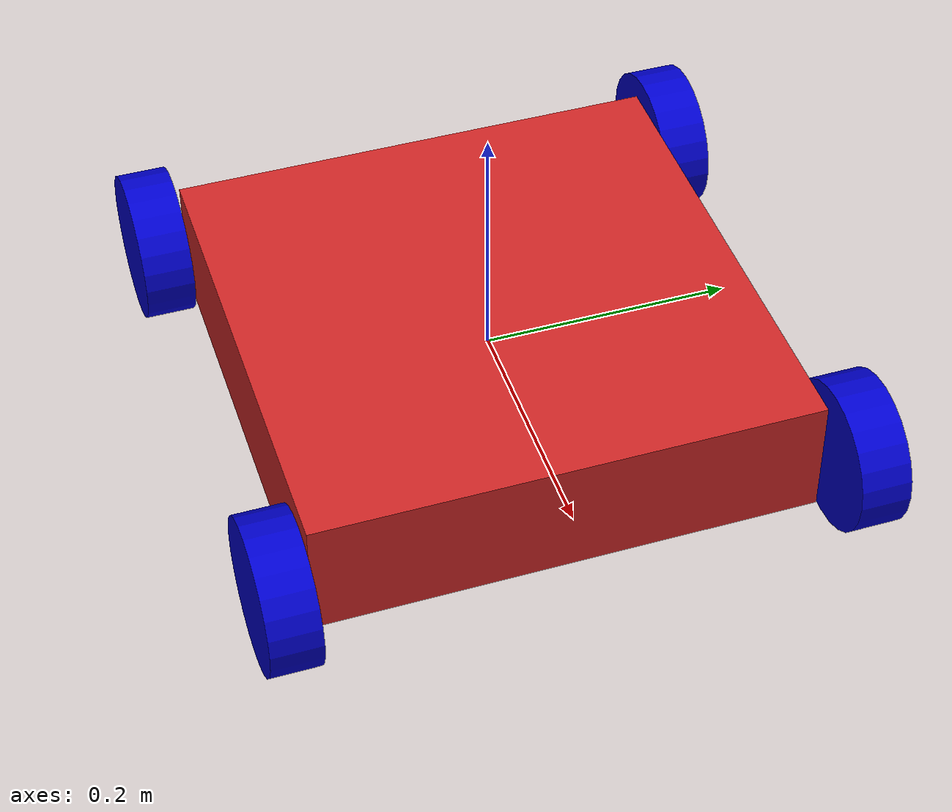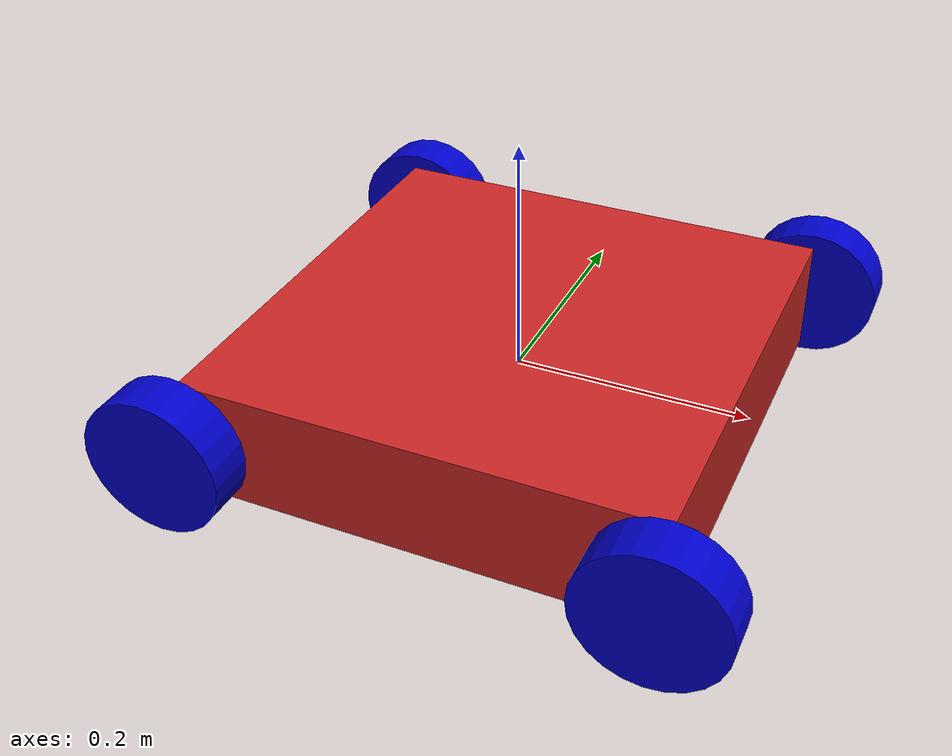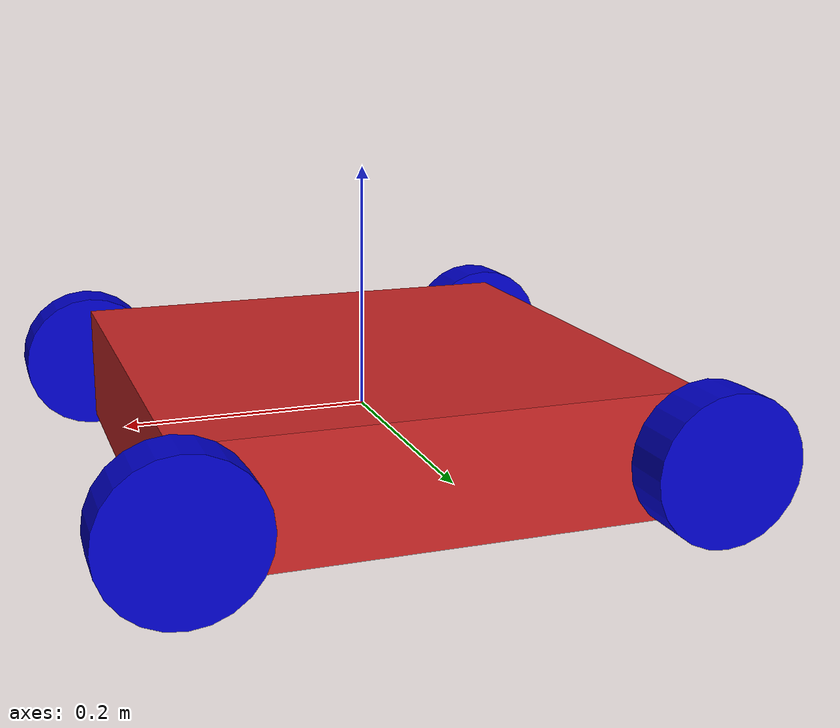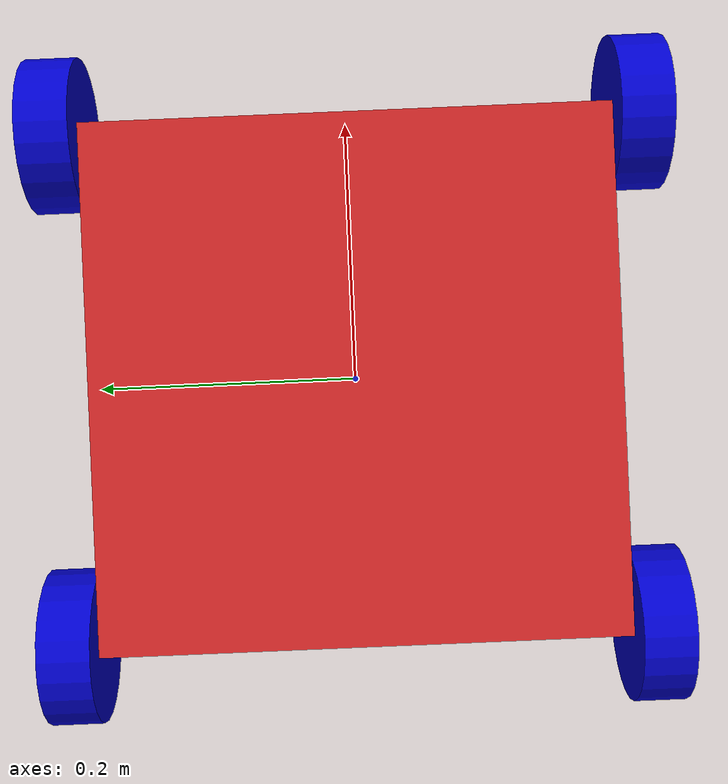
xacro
<?xml version="1.0"?>
<robot xmlns:xacro="http://www.ros.org/wiki/xacro" name="car_robot">

<!-- Base Link -->
<link name="base_link">
</link>

<!--Blue-->
<material name="blue">
    <color rgba="0 0 0.8 1"/>
</material>

<!-- chassic -->
<xacro:property name="chassis_height" value="0.4" />
<xacro:property name="chassis_widht" value="0.4" />
<xacro:property name="chassis_depth" value="0.1" />

<!--chassic-->
<link name="chassis">
    <visual>
        <geometry>
            <box size="${chassis_height} ${chassis_widht} ${chassis_depth}"/>
        </geometry>
    </visual>
    <collision>
        <geometry>
            <box size="${chassis_height} ${chassis_widht} ${chassis_depth}"/>
        </geometry>
    </collision>
    <inertial>
        <mass value="1.0"/> <!--[kg]-->
        <inertia ixx="0.014167" ixy = "0.0" ixz = "0.0" iyy="0.02667" iyz = "0.0" izz="0.014167"/>
    </inertial>
</link>
<gazebo reference="chassis">
    <material>Gazebo/Red</material>
</gazebo>

<joint name="chassis_joint" type="fixed">
    <parent link="base_link"/>
    <child link="chassis"/>
</joint>

<!-- wheel -->
<xacro:property name="wheel_radius" value="0.06" />
<xacro:property name="wheel_length" value="0.04" />

    <!-- macro wheel-->
<xacro:macro name="wheel" params="name reflect_x reflect_y reflect_r reflect_axis">
    <link name="${name}_wheel">
        <visual>
            <geometry>
                <cylinder length="${wheel_length}" radius="${wheel_radius}"/>
            </geometry>
            <material name="blue"/>
        </visual>
        <collision>
            <geometry>
                <cylinder length="${wheel_length}" radius="${wheel_radius}"/>
            </geometry>
        </collision>
        <inertial>
            <mass value="0.3"/> <!--[kg]-->
            <inertia ixx="0.00031" ixy = "0.0" ixz = "0.0" iyy="0.00031" iyz = "0.0" izz="0.00054"/>
        </inertial>
    </link>

    <!--wheel joint-->
    <joint name="${name}_wheel_joint" type="continuous">
        <parent link="chassis"/>
        <child link="${name}_wheel"/>
        <origin xyz="${reflect_x*chassis_height/2} ${reflect_y*(chassis_widht/2+0.025)} 0" rpy="${reflect_r*1.5707} 0 0"/>
        <axis xyz="0 0 ${reflect_axis}"/>
    </joint>

    <!--add transmission to wheel -->
    <transmission name="${name}_wheel_trans">
        <type>transmission_interface/SimpleTransmission</type>
        <actuator name="${name}_wheel_motor">
            <mechanicalReduction>1</mechanicalReduction>
        </actuator>
        <joint name="${name}_wheel_joint">
            <hardwareInterface>hardware_interface/VelocityJointInterface</hardwareInterface>
        </joint>
    </transmission>

    <gazebo reference="${name}_wheel">
        <material>Gazebo/Blue</material>
    </gazebo>
</xacro:macro>

<!--wheel definition-->
<xacro:wheel name="front_right" reflect_x="1" reflect_y="-1" reflect_r="1" reflect_axis="-1"/>
<xacro:wheel name="front_left" reflect_x="1" reflect_y="1" reflect_r="-1" reflect_axis="1"/>
<xacro:wheel name="rear_right" reflect_x="-1" reflect_y="-1" reflect_r="1" reflect_axis="-1"/>
<xacro:wheel name="rear_left" reflect_x="-1" reflect_y="1" reflect_r="-1" reflect_axis="1"/>

<!--plugin gazebo ros control-->
<gazebo>
  <plugin name="gazebo_ros_control" filename="libgazebo_ros_control.so">
    <robotNamespace>/</robotNamespace>
  </plugin>
</gazebo>

</robot>
